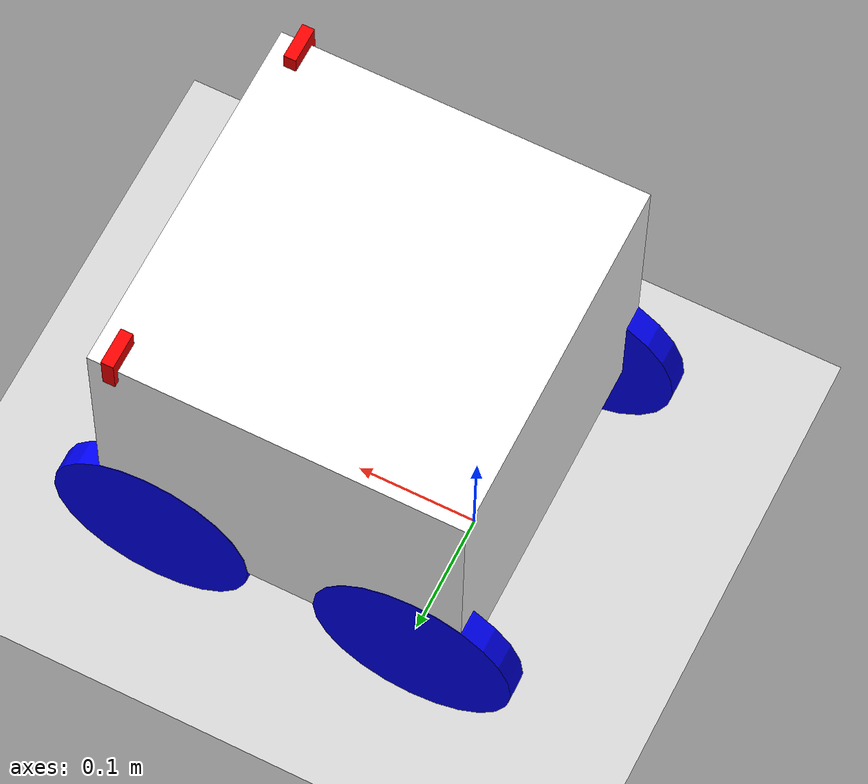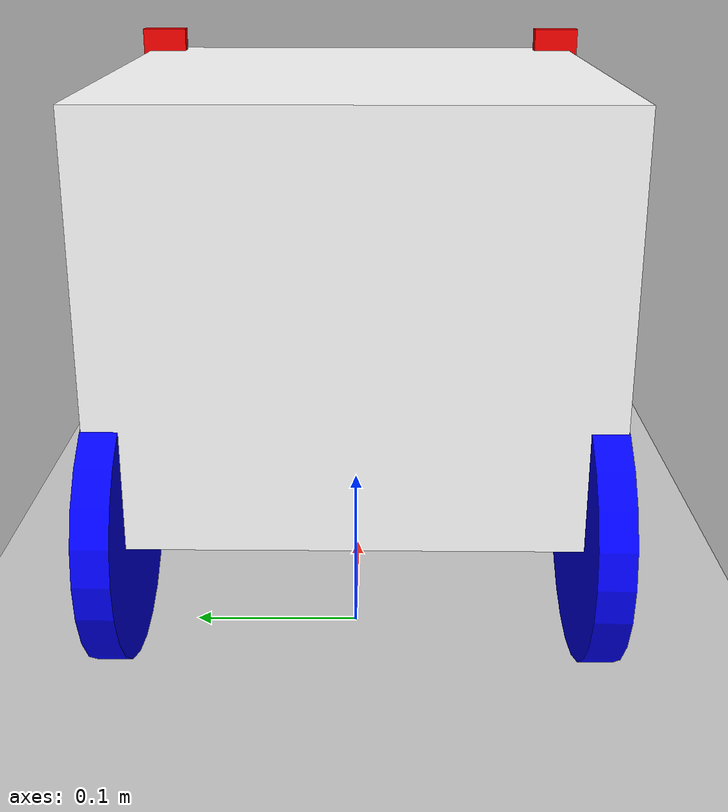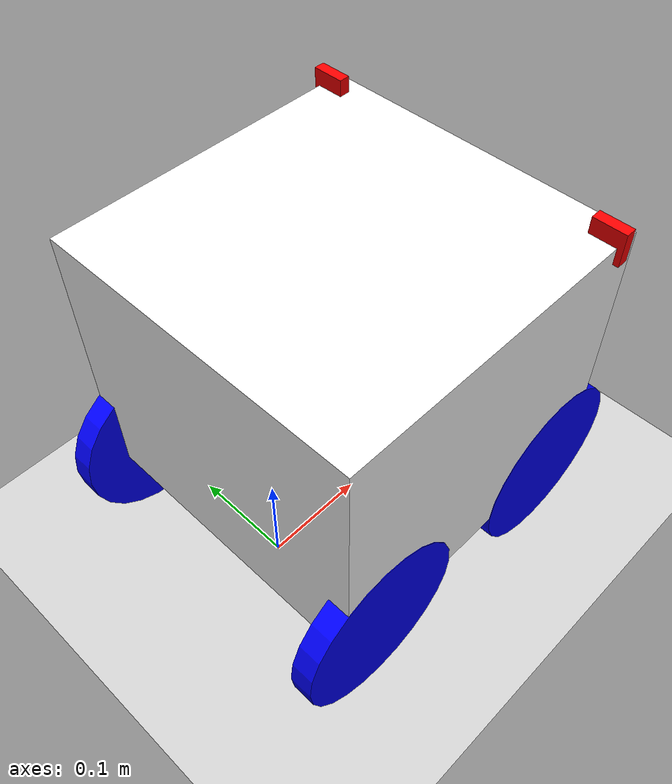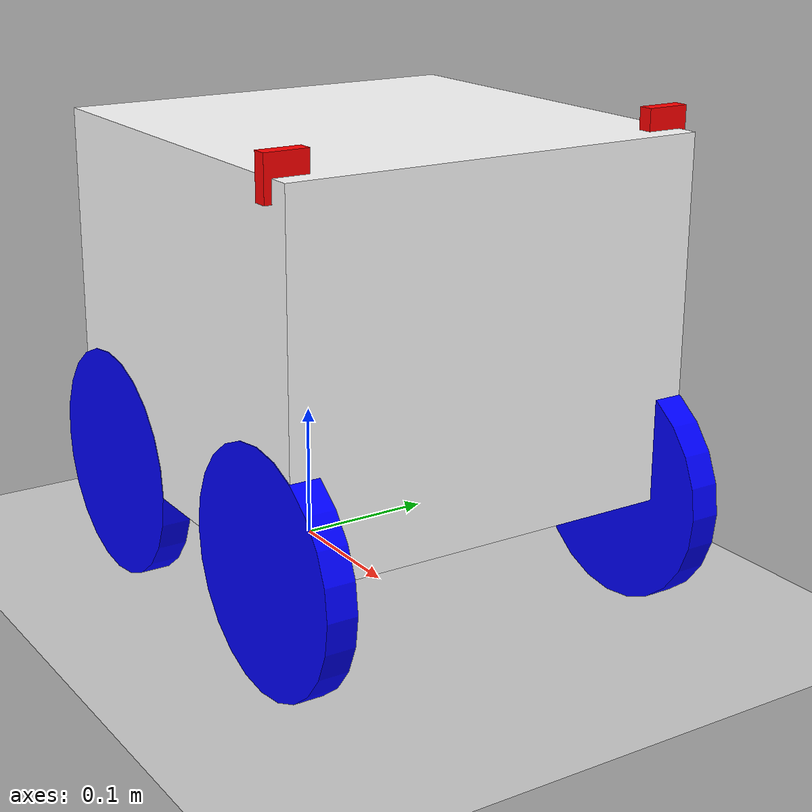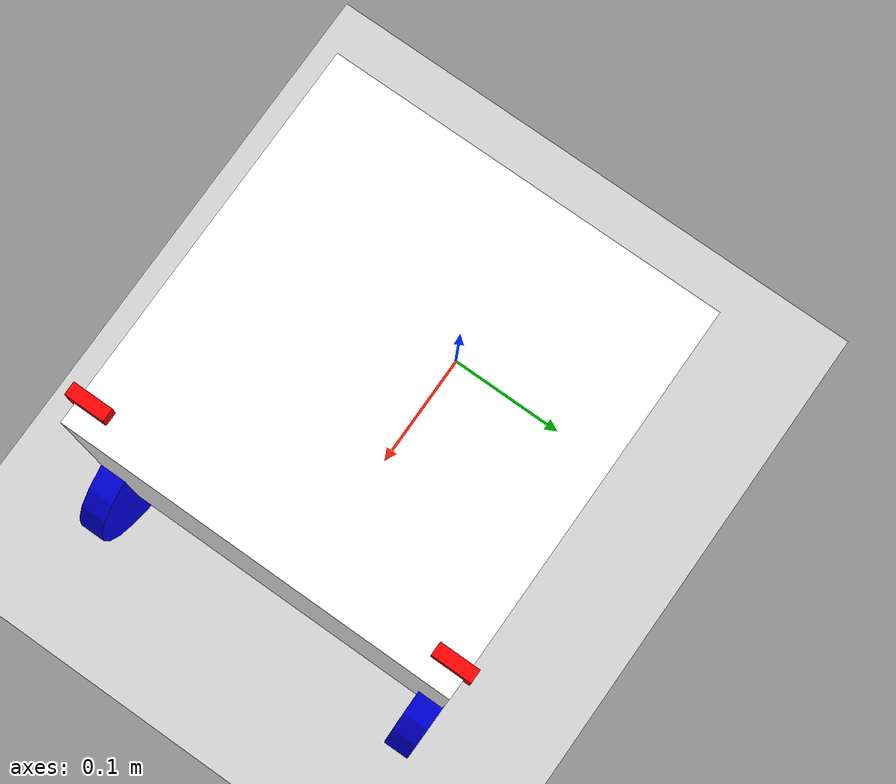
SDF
<?xml version="1.0" ?>
<sdf version="1.9">
  <world name="default">
    <physics name="1ms" type="ignored">
      <max_step_size>0.001</max_step_size>
      <real_time_factor>1.0</real_time_factor>
    </physics>

    <plugin filename="gz-sim-physics-system" name="gz::sim::systems::Physics"/>
    <plugin filename="gz-sim-user-commands-system" name="gz::sim::systems::UserCommands"/>
    <plugin filename="gz-sim-scene-broadcaster-system" name="gz::sim::systems::SceneBroadcaster"/>
    <plugin filename="gz-sim-sensors-system" name="gz::sim::systems::Sensors">
      <render_engine>ogre2</render_engine>
    </plugin>

    <light name="sun" type="directional">
      <cast_shadows>true</cast_shadows>
      <pose>0 0 10 0 0 0</pose>
      <diffuse>0.8 0.8 0.8 1</diffuse>
      <specular>0.2 0.2 0.2 1</specular>
      <direction>-0.5 0.1 -0.9</direction>
    </light>

    <model name="ground_plane">
      <static>true</static>
      <link name="link">
        <collision name="collision">
          <geometry>
            <plane>
              <normal>0 0 1</normal>
              <size>100 100</size>
            </plane>
          </geometry>
        </collision>
        <visual name="visual">
          <geometry>
            <plane>
              <normal>0 0 1</normal>
              <size>100 100</size>
            </plane>
          </geometry>
          <material>
            <ambient>0.5 0.5 0.5 1</ambient>
            <diffuse>0.8 0.8 0.8 1</diffuse>
          </material>
        </visual>
      </link>
    </model>

    <!-- Mustard bottles (spawned at world load) -->

    <model name="my_bot">
      <pose>0 0 0.08255 0 0 0</pose>

      <!-- Base Link -->
      <link name="base_link">
        <inertial>
          <pose>0.05 0 0.075 0 0 0</pose>
          <mass>0.5</mass>
          <inertia>
            <ixx>0.0046875</ixx>
            <ixy>0</ixy>
            <ixz>0</ixz>
            <iyy>0.0046875</iyy>
            <iyz>0</iyz>
            <izz>0.0075</izz>
          </inertia>
        </inertial>

        <!-- Chassis Collision -->
        <collision name="chassis_collision">
          <pose>0.09 0 0.125 0 0 0</pose>
          <geometry>
            <box>
              <size>0.3 0.3 0.15</size>
            </box>
          </geometry>
        </collision>

        <!-- Chassis Visual -->
        <visual name="chassis_visual">
          <pose>0.09 0 0.125 0 0 0</pose>
          <geometry>
            <box>
              <size>0.3 0.3 0.25</size>
            </box>
          </geometry>
          <material>
            <ambient>1 1 1 1</ambient>
            <diffuse>1 1 1 1</diffuse>
          </material>
        </visual>

        <!-- Camera 1 Visual -->
        <visual name="camera_visual">
          <pose>0.22 0.140024 0.25 0 0 0</pose>
          <geometry>
            <box>
              <size>0.01 0.03 0.03</size>
            </box>
          </geometry>
          <material>
            <ambient>1 0 0 1</ambient>
            <diffuse>1 0 0 1</diffuse>
          </material>
        </visual>

        <!-- Camera 2 Visual -->
        <visual name="camera2_visual">
          <pose>0.22 -0.140024 0.25 0 0 0</pose>
          <geometry>
            <box>
              <size>0.01 0.03 0.03</size>
            </box>
          </geometry>
          <material>
            <ambient>1 0 0 1</ambient>
            <diffuse>1 0 0 1</diffuse>
          </material>
        </visual>

        <!-- Camera 1 Sensor -->
        <sensor name="camera" type="camera">
          <pose>0.22 0.140024 0.25 0 0 0</pose>
          <camera>
            <horizontal_fov>1.089</horizontal_fov>
            <image>
              <width>640</width>
              <height>480</height>
              <format>R8G8B8</format>
            </image>
            <clip>
              <near>0.05</near>
              <far>8.0</far>
            </clip>
          </camera>
          <always_on>1</always_on>
          <update_rate>10</update_rate>
          <visualize>true</visualize>
          <topic>camera</topic>
        </sensor>

        <!-- Camera 2 Sensor -->
        <sensor name="camera2" type="camera">
          <pose>0.22 -0.140024 0.25 0 0 0</pose>
          <camera>
            <horizontal_fov>1.089</horizontal_fov>
            <image>
              <width>640</width>
              <height>480</height>
              <format>R8G8B8</format>
            </image>
            <clip>
              <near>0.05</near>
              <far>8.0</far>
            </clip>
          </camera>
          <always_on>1</always_on>
          <update_rate>10</update_rate>
          <visualize>true</visualize>
          <topic>camera2</topic>
        </sensor>
      </link>

      <!-- Left Front Wheel -->
      <link name="left_front_wheel">
        <pose relative_to="base_link">0.2 0.140024 0 -1.5708 0 0</pose>
        <inertial>
          <mass>0.1</mass>
          <inertia>
            <ixx>0.000174022</ixx>
            <ixy>0</ixy>
            <ixz>0</ixz>
            <iyy>0.000174022</iyy>
            <iyz>0</iyz>
            <izz>0.000340725</izz>
          </inertia>
        </inertial>
        <collision name="collision">
          <geometry>
            <cylinder>
              <radius>0.08255</radius>
              <length>0.020955</length>
            </cylinder>
          </geometry>
        </collision>
        <visual name="visual">
          <geometry>
            <cylinder>
              <radius>0.08255</radius>
              <length>0.020955</length>
            </cylinder>
          </geometry>
          <material>
            <ambient>0 0 1 1</ambient>
            <diffuse>0 0 1 1</diffuse>
          </material>
        </visual>
      </link>

      <!-- Left Back Wheel -->
      <link name="left_back_wheel">
        <pose relative_to="base_link">-0.02 0.140024 0 -1.5708 0 0</pose>
        <inertial>
          <mass>0.1</mass>
          <inertia>
            <ixx>0.000174022</ixx>
            <ixy>0</ixy>
            <ixz>0</ixz>
            <iyy>0.000174022</iyy>
            <iyz>0</iyz>
            <izz>0.000340725</izz>
          </inertia>
        </inertial>
        <collision name="collision">
          <geometry>
            <cylinder>
              <radius>0.08255</radius>
              <length>0.020955</length>
            </cylinder>
          </geometry>
        </collision>
        <visual name="visual">
          <geometry>
            <cylinder>
              <radius>0.08255</radius>
              <length>0.020955</length>
            </cylinder>
          </geometry>
          <material>
            <ambient>0 0 1 1</ambient>
            <diffuse>0 0 1 1</diffuse>
          </material>
        </visual>
      </link>

      <!-- Right Front Wheel -->
      <link name="right_front_wheel">
        <pose relative_to="base_link">0.2 -0.140024 0 1.5708 0 0</pose>
        <inertial>
          <mass>0.1</mass>
          <inertia>
            <ixx>0.000174022</ixx>
            <ixy>0</ixy>
            <ixz>0</ixz>
            <iyy>0.000174022</iyy>
            <iyz>0</iyz>
            <izz>0.000340725</izz>
          </inertia>
        </inertial>
        <collision name="collision">
          <geometry>
            <cylinder>
              <radius>0.08255</radius>
              <length>0.020955</length>
            </cylinder>
          </geometry>
          <surface>
            <friction>
              <ode>
                <mu>0.001</mu>
                <mu2>0.001</mu2>
              </ode>
            </friction>
          </surface>
        </collision>
        <visual name="visual">
          <geometry>
            <cylinder>
              <radius>0.08255</radius>
              <length>0.020955</length>
            </cylinder>
          </geometry>
          <material>
            <ambient>0 0 1 1</ambient>
            <diffuse>0 0 1 1</diffuse>
          </material>
        </visual>
      </link>

      <!-- Right Back Wheel -->
      <link name="right_back_wheel">
        <pose relative_to="base_link">-0.02 -0.140024 0 1.5708 0 0</pose>
        <inertial>
          <mass>0.1</mass>
          <inertia>
            <ixx>0.000174022</ixx>
            <ixy>0</ixy>
            <ixz>0</ixz>
            <iyy>0.000174022</iyy>
            <iyz>0</iyz>
            <izz>0.000340725</izz>
          </inertia>
        </inertial>
        <collision name="collision">
          <geometry>
            <cylinder>
              <radius>0.08255</radius>
              <length>0.020955</length>
            </cylinder>
          </geometry>
        </collision>
        <visual name="visual">
          <geometry>
            <cylinder>
              <radius>0.08255</radius>
              <length>0.020955</length>
            </cylinder>
          </geometry>
          <material>
            <ambient>0 0 1 1</ambient>
            <diffuse>0 0 1 1</diffuse>
          </material>
        </visual>
      </link>

      <!-- Joints -->
      <joint name="left_front_wheel_joint" type="revolute">
        <parent>base_link</parent>
        <child>left_front_wheel</child>
        <axis>
          <xyz>0 0 1</xyz>
          <limit>
            <lower>-1e16</lower>
            <upper>1e16</upper>
          </limit>
        </axis>
      </joint>

      <joint name="left_back_wheel_joint" type="revolute">
        <parent>base_link</parent>
        <child>left_back_wheel</child>
        <axis>
          <xyz>0 0 1</xyz>
          <limit>
            <lower>-1e16</lower>
            <upper>1e16</upper>
          </limit>
        </axis>
      </joint>

      <joint name="right_front_wheel_joint" type="revolute">
        <parent>base_link</parent>
        <child>right_front_wheel</child>
        <axis>
          <xyz>0 0 -1</xyz>
          <limit>
            <lower>-1e16</lower>
            <upper>1e16</upper>
          </limit>
        </axis>
      </joint>

      <joint name="right_back_wheel_joint" type="revolute">
        <parent>base_link</parent>
        <child>right_back_wheel</child>
        <axis>
          <xyz>0 0 -1</xyz>
          <limit>
            <lower>-1e16</lower>
            <upper>1e16</upper>
          </limit>
        </axis>
      </joint>

      <!-- Differential Drive Plugin -->
      <plugin filename="gz-sim-diff-drive-system" name="gz::sim::systems::DiffDrive">
        <left_joint>left_front_wheel_joint</left_joint>
        <left_joint>left_back_wheel_joint</left_joint>
        <right_joint>right_front_wheel_joint</right_joint>
        <right_joint>right_back_wheel_joint</right_joint>
        <wheel_separation>0.280048</wheel_separation>
        <wheel_radius>0.08255</wheel_radius>
        <odom_publish_frequency>50</odom_publish_frequency>
        <topic>cmd_vel</topic>
        <odom_topic>odom</odom_topic>
        <frame_id>odom</frame_id>
        <child_frame_id>base_link</child_frame_id>
      </plugin>
    </model>

  </world>
</sdf>
